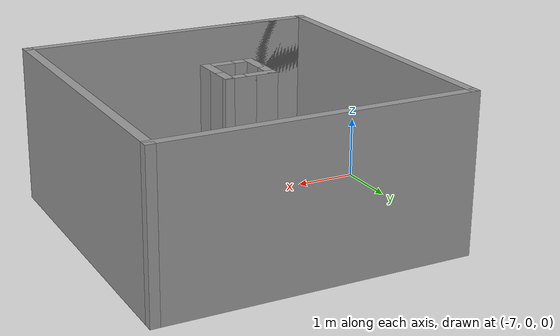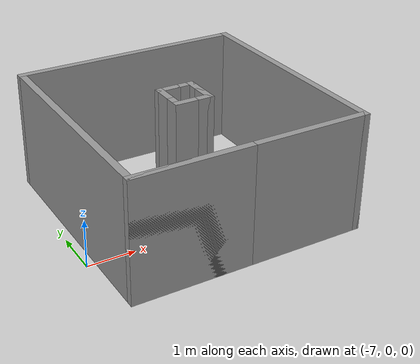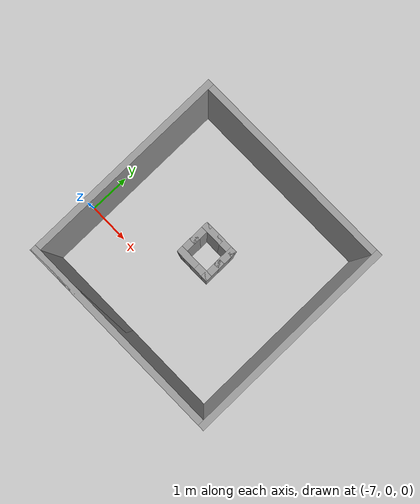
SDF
<?xml version='1.0'?>
<sdf version='1.7'>
  <model name='square'>
    <pose>-3.41239 1.03612 0 0 -0 0</pose>
    <link name='Wall_114'>
      <collision name='Wall_114_Collision'>
        <geometry>
          <box>
            <size>0.5 0.15 2.5</size>
          </box>
        </geometry>
        <pose>0 0 1.25 0 -0 0</pose>
      </collision>
      <visual name='Wall_114_Visual'>
        <pose>0 0 1.25 0 -0 0</pose>
        <geometry>
          <box>
            <size>0.5 0.15 2.5</size>
          </box>
        </geometry>
        <material>
          <script>
            <uri>file://media/materials/scripts/gazebo.material</uri>
            <name>Gazebo/Grey</name>
          </script>
          <ambient>1 1 1 1</ambient>
        </material>
        <meta>
          <layer>0</layer>
        </meta>
      </visual>
      <pose>-1.26772 -0.150095 0 0 -0 -1.5708</pose>
    </link>
    <link name='Wall_115'>
      <collision name='Wall_115_Collision'>
        <geometry>
          <box>
            <size>0.5 0.15 2.5</size>
          </box>
        </geometry>
        <pose>0 0 1.25 0 -0 0</pose>
      </collision>
      <visual name='Wall_115_Visual'>
        <pose>0 0 1.25 0 -0 0</pose>
        <geometry>
          <box>
            <size>0.5 0.15 2.5</size>
          </box>
        </geometry>
        <material>
          <script>
            <uri>file://media/materials/scripts/gazebo.material</uri>
            <name>Gazebo/Grey</name>
          </script>
          <ambient>1 1 1 1</ambient>
        </material>
        <meta>
          <layer>0</layer>
        </meta>
      </visual>
      <pose>-1.09272 -0.325095 0 0 -0 0</pose>
    </link>
    <link name='Wall_116'>
      <collision name='Wall_116_Collision'>
        <geometry>
          <box>
            <size>0.5 0.15 2.5</size>
          </box>
        </geometry>
        <pose>0 0 1.25 0 -0 0</pose>
      </collision>
      <visual name='Wall_116_Visual'>
        <pose>0 0 1.25 0 -0 0</pose>
        <geometry>
          <box>
            <size>0.5 0.15 2.5</size>
          </box>
        </geometry>
        <material>
          <script>
            <uri>file://media/materials/scripts/gazebo.material</uri>
            <name>Gazebo/Grey</name>
          </script>
          <ambient>1 1 1 1</ambient>
        </material>
        <meta>
          <layer>0</layer>
        </meta>
      </visual>
      <pose>-0.742725 -0.325095 0 0 -0 0</pose>
    </link>
    <link name='Wall_117'>
      <collision name='Wall_117_Collision'>
        <geometry>
          <box>
            <size>0.5 0.15 2.5</size>
          </box>
        </geometry>
        <pose>0 0 1.25 0 -0 0</pose>
      </collision>
      <visual name='Wall_117_Visual'>
        <pose>0 0 1.25 0 -0 0</pose>
        <geometry>
          <box>
            <size>0.5 0.15 2.5</size>
          </box>
        </geometry>
        <material>
          <script>
            <uri>file://media/materials/scripts/gazebo.material</uri>
            <name>Gazebo/Grey</name>
          </script>
          <ambient>1 1 1 1</ambient>
        </material>
        <meta>
          <layer>0</layer>
        </meta>
      </visual>
      <pose>-0.567725 -0.150095 0 0 -0 1.5708</pose>
    </link>
    <link name='Wall_118'>
      <collision name='Wall_118_Collision'>
        <geometry>
          <box>
            <size>0.5 0.15 2.5</size>
          </box>
        </geometry>
        <pose>0 0 1.25 0 -0 0</pose>
      </collision>
      <visual name='Wall_118_Visual'>
        <pose>0 0 1.25 0 -0 0</pose>
        <geometry>
          <box>
            <size>0.5 0.15 2.5</size>
          </box>
        </geometry>
        <material>
          <script>
            <uri>file://media/materials/scripts/gazebo.material</uri>
            <name>Gazebo/Grey</name>
          </script>
          <ambient>1 1 1 1</ambient>
        </material>
        <meta>
          <layer>0</layer>
        </meta>
      </visual>
      <pose>-0.567725 0.199905 0 0 -0 1.5708</pose>
    </link>
    <link name='Wall_119'>
      <collision name='Wall_119_Collision'>
        <geometry>
          <box>
            <size>0.5 0.15 2.5</size>
          </box>
        </geometry>
        <pose>0 0 1.25 0 -0 0</pose>
      </collision>
      <visual name='Wall_119_Visual'>
        <pose>0 0 1.25 0 -0 0</pose>
        <geometry>
          <box>
            <size>0.5 0.15 2.5</size>
          </box>
        </geometry>
        <material>
          <script>
            <uri>file://media/materials/scripts/gazebo.material</uri>
            <name>Gazebo/Grey</name>
          </script>
          <ambient>1 1 1 1</ambient>
        </material>
        <meta>
          <layer>0</layer>
        </meta>
      </visual>
      <pose>-0.742725 0.374905 0 0 -0 3.14159</pose>
    </link>
    <link name='Wall_120'>
      <collision name='Wall_120_Collision'>
        <geometry>
          <box>
            <size>0.5 0.15 2.5</size>
          </box>
        </geometry>
        <pose>0 0 1.25 0 -0 0</pose>
      </collision>
      <visual name='Wall_120_Visual'>
        <pose>0 0 1.25 0 -0 0</pose>
        <geometry>
          <box>
            <size>0.5 0.15 2.5</size>
          </box>
        </geometry>
        <material>
          <script>
            <uri>file://media/materials/scripts/gazebo.material</uri>
            <name>Gazebo/Grey</name>
          </script>
          <ambient>1 1 1 1</ambient>
        </material>
        <meta>
          <layer>0</layer>
        </meta>
      </visual>
      <pose>-1.09272 0.374905 0 0 -0 3.14159</pose>
    </link>
    <link name='Wall_121'>
      <collision name='Wall_121_Collision'>
        <geometry>
          <box>
            <size>0.5 0.15 2.5</size>
          </box>
        </geometry>
        <pose>0 0 1.25 0 -0 0</pose>
      </collision>
      <visual name='Wall_121_Visual'>
        <pose>0 0 1.25 0 -0 0</pose>
        <geometry>
          <box>
            <size>0.5 0.15 2.5</size>
          </box>
        </geometry>
        <material>
          <script>
            <uri>file://media/materials/scripts/gazebo.material</uri>
            <name>Gazebo/Grey</name>
          </script>
          <ambient>1 1 1 1</ambient>
        </material>
        <meta>
          <layer>0</layer>
        </meta>
      </visual>
      <pose>-1.26772 0.199905 0 0 -0 -1.5708</pose>
    </link>
    <link name='Wall_79'>
      <collision name='Wall_79_Collision'>
        <geometry>
          <box>
            <size>5 0.15 2.5</size>
          </box>
        </geometry>
        <pose>0 0 1.25 0 -0 0</pose>
      </collision>
      <visual name='Wall_79_Visual'>
        <pose>0 0 1.25 0 -0 0</pose>
        <geometry>
          <box>
            <size>5 0.15 2.5</size>
          </box>
        </geometry>
        <material>
          <script>
            <uri>file://media/materials/scripts/gazebo.material</uri>
            <name>Gazebo/Grey</name>
          </script>
          <ambient>1 1 1 1</ambient>
        </material>
        <meta>
          <layer>0</layer>
        </meta>
      </visual>
      <pose>-0.912385 -2.425 0 0 -0 0</pose>
    </link>
    <link name='Wall_80'>
      <collision name='Wall_80_Collision'>
        <geometry>
          <box>
            <size>5 0.15 2.5</size>
          </box>
        </geometry>
        <pose>0 0 1.25 0 -0 0</pose>
      </collision>
      <visual name='Wall_80_Visual'>
        <pose>0 0 1.25 0 -0 0</pose>
        <geometry>
          <box>
            <size>5 0.15 2.5</size>
          </box>
        </geometry>
        <material>
          <script>
            <uri>file://media/materials/scripts/gazebo.material</uri>
            <name>Gazebo/Grey</name>
          </script>
          <ambient>1 1 1 1</ambient>
        </material>
        <meta>
          <layer>0</layer>
        </meta>
      </visual>
      <pose>1.51262 -0 0 0 -0 1.5708</pose>
    </link>
    <link name='Wall_81'>
      <collision name='Wall_81_Collision'>
        <geometry>
          <box>
            <size>5 0.15 2.5</size>
          </box>
        </geometry>
        <pose>0 0 1.25 0 -0 0</pose>
      </collision>
      <visual name='Wall_81_Visual'>
        <pose>0 0 1.25 0 -0 0</pose>
        <geometry>
          <box>
            <size>5 0.15 2.5</size>
          </box>
        </geometry>
        <material>
          <script>
            <uri>file://media/materials/scripts/gazebo.material</uri>
            <name>Gazebo/Grey</name>
          </script>
          <ambient>1 1 1 1</ambient>
        </material>
        <meta>
          <layer>0</layer>
        </meta>
      </visual>
      <pose>-0.912385 2.425 0 0 -0 3.14159</pose>
    </link>
    <link name='Wall_82'>
      <collision name='Wall_82_Collision'>
        <geometry>
          <box>
            <size>5 0.15 2.5</size>
          </box>
        </geometry>
        <pose>0 0 1.25 0 -0 0</pose>
      </collision>
      <visual name='Wall_82_Visual'>
        <pose>0 0 1.25 0 -0 0</pose>
        <geometry>
          <box>
            <size>5 0.15 2.5</size>
          </box>
        </geometry>
        <material>
          <script>
            <uri>file://media/materials/scripts/gazebo.material</uri>
            <name>Gazebo/Grey</name>
          </script>
          <ambient>1 1 1 1</ambient>
        </material>
        <meta>
          <layer>0</layer>
        </meta>
      </visual>
      <pose>-3.33738 -0 0 0 -0 -1.5708</pose>
    </link>
    <link name='Wall_84'>
      <collision name='Wall_84_Collision'>
        <geometry>
          <box>
            <size>2.5 0.15 2.5</size>
          </box>
        </geometry>
        <pose>0 0 1.25 0 -0 0</pose>
      </collision>
      <visual name='Wall_84_Visual'>
        <pose>0 0 1.25 0 -0 0</pose>
        <geometry>
          <box>
            <size>2.5 0.15 2.5</size>
          </box>
        </geometry>
        <material>
          <script>
            <uri>file://media/materials/scripts/gazebo.material</uri>
            <name>Gazebo/Grey</name>
          </script>
          <ambient>1 1 1 1</ambient>
        </material>
        <meta>
          <layer>0</layer>
        </meta>
      </visual>
      <pose>-2.16239 -2.425 0 0 -0 0</pose>
    </link>
    <static>1</static>
  </model>
</sdf>
